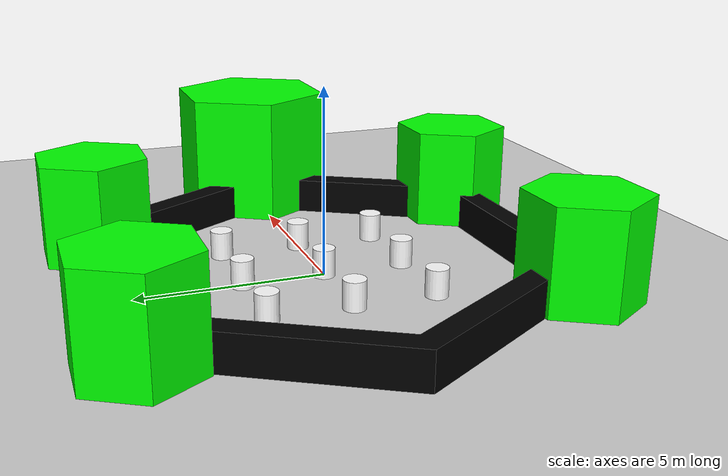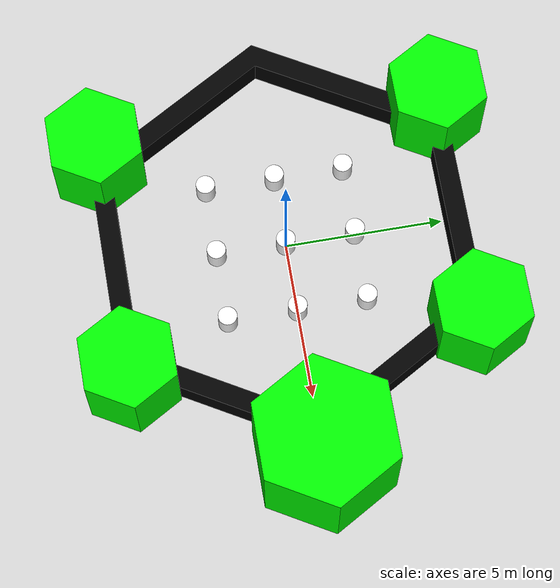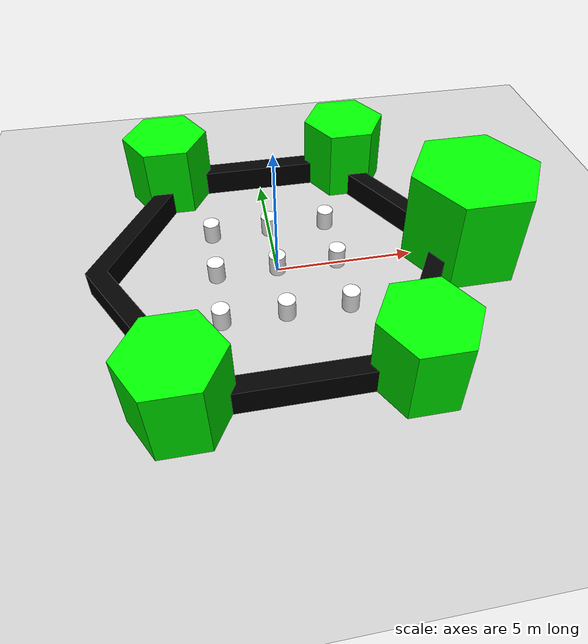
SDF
<?xml version="1.0"?>
<sdf version="1.6">
  <world name="turtlebot3_world">
   <scene>
     <grid>false</grid>
     <ambient>0.4 0.4 0.4 1</ambient>
     <background>0.7 0.7 0.7 1</background>
     <shadows>true</shadows>
   </scene>
   <plugin name='ignition::gazebo::systems::Physics' filename='ignition-gazebo-physics-system'/>
   <plugin name='ignition::gazebo::systems::Sensors' filename='ignition-gazebo-sensors-system'>
     <render_engine>ogre2</render_engine>
   </plugin>
   <plugin name='ignition::gazebo::systems::UserCommands' filename='ignition-gazebo-user-commands-system'/>
   <plugin name='ignition::gazebo::systems::SceneBroadcaster' filename='ignition-gazebo-scene-broadcaster-system'/>
   <gui fullscreen='false'>
     <plugin name='3D View' filename='GzScene3D'>
       <ignition-gui>
         <title>3D View</title>
         <property type='bool' key='showTitleBar'>false</property>
         <property type='string' key='state'>docked</property>
       </ignition-gui>
       <engine>ogre2</engine>
       <scene>scene</scene>
       <ambient_light>1 1 1 </ambient_light>

       <background_color>0.5 0.8 0.95</background_color>
       <camera_follow>
         <target>prius_hybrid</target>
         <p_gain>0.5</p_gain>
         <offset>100 100 100</offset>
       </camera_follow>
     </plugin>
     <plugin name='World control' filename='WorldControl'>
       <ignition-gui>
         <title>World control</title>
         <property type='bool' key='showTitleBar'>false</property>
         <property type='bool' key='resizable'>false</property>
         <property type='double' key='height'>72</property>
         <property type='double' key='width'>121</property>
         <property type='double' key='z'>1</property>
         <property type='string' key='state'>floating</property>
         <anchors target='3D View'>
           <line own='left' target='left'/>
           <line own='bottom' target='bottom'/>
         </anchors>
       </ignition-gui>
       <play_pause>true</play_pause>
       <step>true</step>
       <start_paused>true</start_paused>
     </plugin>
     <plugin name='World stats' filename='WorldStats'>
       <ignition-gui>
         <title>World stats</title>
         <property type='bool' key='showTitleBar'>false</property>
         <property type='bool' key='resizable'>false</property>
         <property type='double' key='height'>110</property>
         <property type='double' key='width'>290</property>
         <property type='double' key='z'>1</property>
         <property type='string' key='state'>floating</property>
         <anchors target='3D View'>
           <line own='right' target='right'/>
           <line own='bottom' target='bottom'/>
         </anchors>
       </ignition-gui>
       <sim_time>true</sim_time>
       <real_time>true</real_time>
       <real_time_factor>true</real_time_factor>
       <iterations>true</iterations>
     </plugin>
     <plugin name='Teleop' filename='Teleop'>
       <ignition-gui>
         <property type='string' key='state'>docked</property>
       </ignition-gui>
       <topic>/cmd_vel</topic>
     </plugin>
   </gui>
   <gravity>0 0 -9.8</gravity>
   <magnetic_field>6e-06 2.3e-05 -4.2e-05</magnetic_field>
   <atmosphere type='adiabatic'/>
   <physics type='ode'>
     <max_step_size>0.001</max_step_size>
     <real_time_factor>1</real_time_factor>
     <real_time_update_rate>1000</real_time_update_rate>
   </physics>
    <include>
      <uri>model://ground_plane</uri>
    </include>

    <include>
      <uri>model://sun</uri>
    </include>

    <scene>
      <shadows>false</shadows>
    </scene>

    <gui fullscreen='0'>
      <camera name='user_camera'>
        <pose frame=''>0 0 10 0 1.570796 0</pose>
        <view_controller>orbit</view_controller>
        <projection_type>perspective</projection_type>
      </camera>
    </gui>

    <model name="turtlebot3_world">
      <static>1</static>
      <include>
        <uri>model://turtlebot3_world</uri>
      </include>
    </model>

  </world>
</sdf>

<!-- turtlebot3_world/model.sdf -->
<sdf version="1.5">
    <model name='ros_symbol'>
      <static>1</static>
      <link name='symbol'>
        <collision name='one_one'>
          <pose>-2.2 -2.2 0.25 0 0 0</pose>
          <geometry>
            <cylinder>
              <radius>0.3</radius>
              <length>1</length>
            </cylinder>
          </geometry>
          <max_contacts>10</max_contacts>
          <surface>
            <bounce/>
            <friction>
              <ode/>
            </friction>
            <contact>
              <ode/>
            </contact>
          </surface>
        </collision>

        <visual name='one_one'>
          <pose>-2.2 -2.2 0.25 0 0 0</pose>
          <geometry>
            <cylinder>
              <radius>0.3</radius>
              <length>1</length>
            </cylinder>
          </geometry>
          <material>
            <ambient>1 1 1 1</ambient>
            <diffuse>1 1 1 1</diffuse>
            <specular>0.2 0.2 0.2 1</specular>
            <emissive>0 0 0 1</emissive>
          </material>
        </visual>

        <collision name='one_two'>
          <pose>-2.2 0 0.25 0 0 0</pose>
          <geometry>
            <cylinder>
              <radius>0.3</radius>
              <length>1</length>
            </cylinder>
          </geometry>
          <max_contacts>10</max_contacts>
          <surface>
            <bounce/>
            <friction>
              <ode/>
            </friction>
            <contact>
              <ode/>
            </contact>
          </surface>
        </collision>

        <visual name='one_two'>
          <pose>-2.2 0 0.25 0 0 0</pose>
          <geometry>
            <cylinder>
              <radius>0.3</radius>
              <length>1</length>
            </cylinder>
          </geometry>
          <material>
            <ambient>1 1 1 1</ambient>
            <diffuse>1 1 1 1</diffuse>
            <specular>0.2 0.2 0.2 1</specular>
            <emissive>0 0 0 1</emissive>
          </material>
        </visual>

        <collision name='one_three'>
          <pose>-2.2 2.2 0.25 0 0 0</pose>
          <geometry>
            <cylinder>
              <radius>0.3</radius>
              <length>1</length>
            </cylinder>
          </geometry>
          <max_contacts>10</max_contacts>
          <surface>
            <bounce/>
            <friction>
              <ode/>
            </friction>
            <contact>
              <ode/>
            </contact>
          </surface>
        </collision>

        <visual name='one_three'>
          <pose>-2.2 2.2 0.25 0 0 0</pose>
          <geometry>
            <cylinder>
              <radius>0.3</radius>
              <length>1</length>
            </cylinder>
          </geometry>
          <material>
            <ambient>1 1 1 1</ambient>
            <diffuse>1 1 1 1</diffuse>
            <specular>0.2 0.2 0.2 1</specular>
            <emissive>0 0 0 1</emissive>
          </material>
        </visual>

        <collision name='two_one'>
          <pose>0 -2.2 0.25 0 0 0</pose>
          <geometry>
            <cylinder>
              <radius>0.3</radius>
              <length>1</length>
            </cylinder>
          </geometry>
          <max_contacts>10</max_contacts>
          <surface>
            <bounce/>
            <friction>
              <ode/>
            </friction>
            <contact>
              <ode/>
            </contact>
          </surface>
        </collision>

        <visual name='two_one'>
          <pose>0 -2.2 0.25 0 0 0</pose>
          <geometry>
            <cylinder>
              <radius>0.3</radius>
              <length>1</length>
            </cylinder>
          </geometry>
          <material>
            <ambient>1 1 1 1</ambient>
            <diffuse>1 1 1 1</diffuse>
            <specular>0.2 0.2 0.2 1</specular>
            <emissive>0 0 0 1</emissive>
          </material>
        </visual>

        <collision name='two_two'>
          <pose>0 0 0.25 0 0 0</pose>
          <geometry>
            <cylinder>
              <radius>0.3</radius>
              <length>1</length>
            </cylinder>
          </geometry>
          <max_contacts>10</max_contacts>
          <surface>
            <bounce/>
            <friction>
              <ode/>
            </friction>
            <contact>
              <ode/>
            </contact>
          </surface>
        </collision>

        <visual name='two_two'>
          <pose>0 0 0.25 0 0 0</pose>
          <geometry>
            <cylinder>
              <radius>0.3</radius>
              <length>1</length>
            </cylinder>
          </geometry>
          <material>
            <ambient>1 1 1 1</ambient>
            <diffuse>1 1 1 1</diffuse>
            <specular>0.2 0.2 0.2 1</specular>
            <emissive>0 0 0 1</emissive>
          </material>
        </visual>

        <collision name='two_three'>
          <pose>0 2.2 0.25 0 0 0</pose>
          <geometry>
            <cylinder>
              <radius>0.3</radius>
              <length>1</length>
            </cylinder>
          </geometry>
          <max_contacts>10</max_contacts>
          <surface>
            <bounce/>
            <friction>
              <ode/>
            </friction>
            <contact>
              <ode/>
            </contact>
          </surface>
        </collision>

        <visual name='two_three'>
          <pose>0 2.2 0.25 0 0 0</pose>
          <geometry>
            <cylinder>
              <radius>0.3</radius>
              <length>1</length>
            </cylinder>
          </geometry>
          <material>
            <ambient>1 1 1 1</ambient>
            <diffuse>1 1 1 1</diffuse>
            <specular>0.2 0.2 0.2 1</specular>
            <emissive>0 0 0 1</emissive>
          </material>
        </visual>

        <collision name='three_one'>
          <pose>2.2 -2.2 0.25 0 0 0</pose>
          <geometry>
            <cylinder>
              <radius>0.3</radius>
              <length>1</length>
            </cylinder>
          </geometry>
          <max_contacts>10</max_contacts>
          <surface>
            <bounce/>
            <friction>
              <ode/>
            </friction>
            <contact>
              <ode/>
            </contact>
          </surface>
        </collision>

        <visual name='three_one'>
          <pose>2.2 -2.2 0.25 0 0 0</pose>
          <geometry>
            <cylinder>
              <radius>0.3</radius>
              <length>1</length>
            </cylinder>
          </geometry>
          <material>
            <ambient>1 1 1 1</ambient>
            <diffuse>1 1 1 1</diffuse>
            <specular>0.2 0.2 0.2 1</specular>
            <emissive>0 0 0 1</emissive>
          </material>
        </visual>

        <collision name='three_two'>
          <pose>2.2 0 0.25 0 0 0</pose>
          <geometry>
            <cylinder>
              <radius>0.3</radius>
              <length>1</length>
            </cylinder>
          </geometry>
          <max_contacts>10</max_contacts>
          <surface>
            <bounce/>
            <friction>
              <ode/>
            </friction>
            <contact>
              <ode/>
            </contact>
          </surface>
        </collision>

        <visual name='three_two'>
          <pose>2.2 0 0.25 0 0 0</pose>
          <geometry>
            <cylinder>
              <radius>0.3</radius>
              <length>1</length>
            </cylinder>
          </geometry>
          <material>
            <ambient>1 1 1 1</ambient>
            <diffuse>1 1 1 1</diffuse>
            <specular>0.2 0.2 0.2 1</specular>
            <emissive>0 0 0 1</emissive>
          </material>
        </visual>

        <collision name='three_three'>
          <pose>2.2 2.2 0.25 0 0 0</pose>
          <geometry>
            <cylinder>
              <radius>0.3</radius>
              <length>1</length>
            </cylinder>
          </geometry>
          <max_contacts>10</max_contacts>
          <surface>
            <bounce/>
            <friction>
              <ode/>
            </friction>
            <contact>
              <ode/>
            </contact>
          </surface>
        </collision>

        <visual name='three_three'>
          <pose>2.2 2.2 0.25 0 0 0</pose>
          <geometry>
            <cylinder>
              <radius>0.3</radius>
              <length>1</length>
            </cylinder>
          </geometry>
          <material>
            <ambient>1 1 1 1</ambient>
            <diffuse>1 1 1 1</diffuse>
            <specular>0.2 0.2 0.2 1</specular>
            <emissive>0 0 0 1</emissive>
          </material>
        </visual>

        <!-- Draw Hexagon -->
        <collision name='head'>
          <pose>3.5 0 -0.5 0 0 0</pose>
          <geometry>
            <mesh>
              <uri>model://turtlebot3_world/meshes/hexagon.dae</uri>
              <scale>1.6 1.6 1.6</scale>
            </mesh>
          </geometry>
          <max_contacts>10</max_contacts>
          <surface>
            <bounce/>
            <friction>
              <ode/>
            </friction>
            <contact>
              <ode/>
            </contact>
          </surface>
        </collision>

        <visual name='head'>
          <pose>7 0 -0.5 0 0 0</pose>
          <geometry>
            <mesh>
              <uri>model://turtlebot3_world/meshes/hexagon.dae</uri>
              <scale>1.6 1.6 1.6</scale>
            </mesh>
          </geometry>
          <material>
            <ambient>0 1 0 1</ambient>
            <diffuse>0 1 0 1</diffuse>
            <specular>0.2 0.2 0.2 1</specular>
            <emissive>0 0 0 1</emissive>
          </material>
        </visual>

        <collision name='left_hand'>
          <pose>3.6 5.4 0 0 0 0</pose>
          <geometry>
            <mesh>
              <uri>model://turtlebot3_world/meshes/hexagon.dae</uri>
              <scale>1.1 1.1 1.1</scale>
            </mesh>
          </geometry>
          <max_contacts>10</max_contacts>
          <surface>
            <bounce/>
            <friction>
              <ode/>
            </friction>
            <contact>
              <ode/>
            </contact>
          </surface>
        </collision>

        <visual name='left_hand'>
          <pose>3.6 5.4 0 0 0 0</pose>
          <geometry>
            <mesh>
              <uri>model://turtlebot3_world/meshes/hexagon.dae</uri>
              <scale>1.1 1.1 1.1</scale>
            </mesh>
          </geometry>
          <material>
            <ambient>0 1 0 1</ambient>
            <diffuse>0 1 0 1</diffuse>
            <specular>0.2 0.2 0.2 1</specular>
            <emissive>0 0 0 1</emissive>
          </material>
        </visual>

        <collision name='right_hand'>
          <pose>3.6 -5.4 0 0 0 0</pose>
          <geometry>
            <mesh>
              <uri>model://turtlebot3_world/meshes/hexagon.dae</uri>
              <scale>1.1 1.1 1.1</scale>
            </mesh>
          </geometry>
          <max_contacts>10</max_contacts>
          <surface>
            <bounce/>
            <friction>
              <ode/>
            </friction>
            <contact>
              <ode/>
            </contact>
          </surface>
        </collision>

        <visual name='right_hand'>
          <pose>3.6 -5.4 0 0 0 0</pose>
          <geometry>
            <mesh>
              <uri>model://turtlebot3_world/meshes/hexagon.dae</uri>
              <scale>1.1 1.1 1.1</scale>
            </mesh>
          </geometry>
          <material>
            <ambient>0 1 0 1</ambient>
            <diffuse>0 1 0 1</diffuse>
            <specular>0.2 0.2 0.2 1</specular>
            <emissive>0 0 0 1</emissive>
          </material>
        </visual>

        <collision name='left_foot'>
          <pose>-3.6 5.4 0 0 0 0</pose>
          <geometry>
            <mesh>
              <uri>model://turtlebot3_world/meshes/hexagon.dae</uri>
              <scale>1.1 1.1 1.1</scale>
            </mesh>
          </geometry>
          <max_contacts>10</max_contacts>
          <surface>
            <bounce/>
            <friction>
              <ode/>
            </friction>
            <contact>
              <ode/>
            </contact>
          </surface>
        </collision>

        <visual name='left_foot'>
          <pose>-3.6 5.4 0 0 0 0</pose>
          <geometry>
            <mesh>
              <uri>model://turtlebot3_world/meshes/hexagon.dae</uri>
              <scale>1.1 1.1 1.1</scale>
            </mesh>
          </geometry>
          <material>
            <ambient>0 1 0 1</ambient>
            <diffuse>0 1 0 1</diffuse>
            <specular>0.2 0.2 0.2 1</specular>
            <emissive>0 0 0 1</emissive>
          </material>
        </visual>

        <collision name='right_foot'>
          <pose>-3.6 -5.4 0 0 0 0</pose>
          <geometry>
            <mesh>
              <uri>model://turtlebot3_world/meshes/hexagon.dae</uri>
              <scale>1.1 1.1 1.1</scale>
            </mesh>
          </geometry>
          <max_contacts>10</max_contacts>
          <surface>
            <bounce/>
            <friction>
              <ode/>
            </friction>
            <contact>
              <ode/>
            </contact>
          </surface>
        </collision>

        <visual name='right_foot'>
          <pose>-3.6 -5.4 0 0 0 0</pose>
          <geometry>
            <mesh>
              <uri>model://turtlebot3_world/meshes/hexagon.dae</uri>
              <scale>1.1 1.1 1.1</scale>
            </mesh>
          </geometry>
          <material>
            <ambient>0 1 0 1</ambient>
            <diffuse>0 1 0 1</diffuse>
            <specular>0.2 0.2 0.2 1</specular>
            <emissive>0 0 0 1</emissive>
          </material>
        </visual>

        <!-- Draw Wall -->
        <collision name='body'>
        <pose>0 0 -0.3 0 0 -1.5708</pose>
        <geometry>
          <mesh>
            <uri>model://turtlebot3_world/meshes/wall.dae</uri>
            <scale>0.5 0.5 0.25</scale>
          </mesh>
        </geometry>
        <max_contacts>10</max_contacts>
        <surface>
          <bounce/>
          <friction>
            <ode/>
          </friction>
          <contact>
            <ode/>
          </contact>
        </surface>
      </collision>

      <visual name='body'>
        <pose>0 0 -0.3 0 0 -1.5708</pose>
        <geometry>
          <mesh>
            <uri>model://turtlebot3_world/meshes/wall.dae</uri>
            <scale>0.5 0.5 0.25</scale>
          </mesh>
        </geometry>
        <material>
          <ambient>0 0 0 1</ambient>
          <diffuse>0 0 0 1</diffuse>
          <specular>0 0 0 1</specular>
          <emissive>0 0 0 1</emissive>
        </material>
      </visual>
    </link>
  </model>
</sdf>
